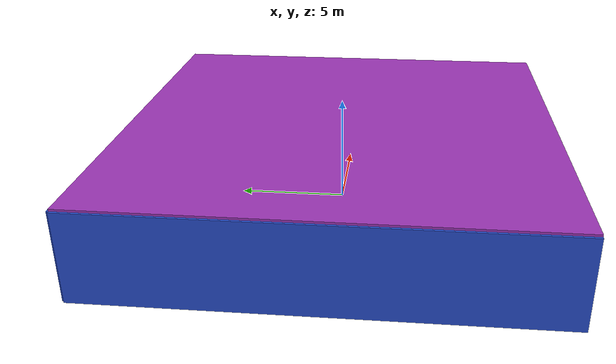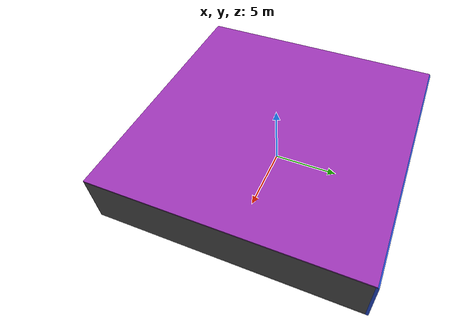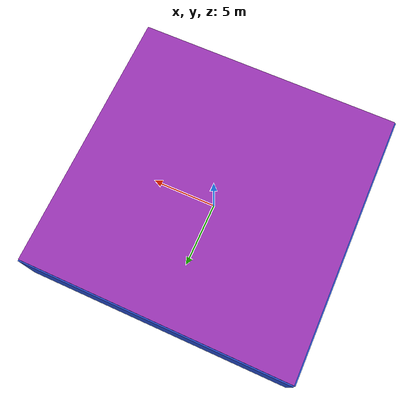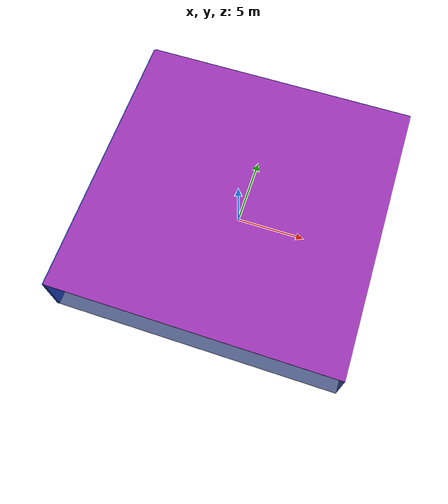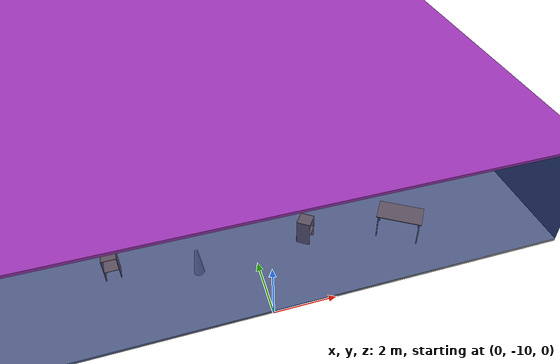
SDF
<sdf version="1.4">
 <world name="default">
  <physics type="ode">
   <max_step_size>0.001</max_step_size>
   <real_time_factor>1</real_time_factor>
   <real_time_update_rate>1000</real_time_update_rate>
   <gravity>0 0 -9.8</gravity>
  </physics>
  <scene><ambient>0.4 0.4 0.4 1</ambient><background>0.7 0.7 0.7 1</background><shadows>1</shadows></scene>
  <model name="Surrounding">
   <static>1</static>
   <link name="Ceiling">
    <collision name="Ceiling_Collision"><geometry><box><size>20 20 0.1</size></box></geometry></collision>
    <visual name="Ceiling_Visual">
     <geometry><box><size>20 20 0.1</size></box></geometry>
     <material>
      <script><uri>file://media/materials/scripts/gazebo.material</uri><name>Gazebo/Purple</name></script>
     </material>
    </visual>
    <pose>0 0 4.05 0 0 0</pose>
   </link>
   <link name="Wall_South">
    <collision name="Wall_South_Collision">
     <geometry><box><size>20 0 4</size></box></geometry>
     <pose>0 0 2 0 -0 0</pose>
    </collision>
    <visual name="Wall_South_Visual">
     <pose>0 0 2 0 -0 0</pose>
     <geometry><box><size>20 0 4</size></box></geometry>
     <material>
      <script><uri>file://media/materials/scripts/gazebo.material</uri><name>Gazebo/BlueTransparent</name></script>
     </material>
    </visual>
    <velocity_decay><linear>0</linear><angular>0</angular></velocity_decay>
    <pose>0 -10 0 0 -0 0</pose>
   </link>
   <link name="Wall_East">
    <collision name="Wall_21_Collision">
     <geometry><box><size>20 0 4</size></box></geometry>
     <pose>0 0 2 0 -0 0</pose>
    </collision>
    <visual name="Wall_21_Visual">
     <pose>0 0 2 0 -0 0</pose>
     <geometry><box><size>20 0 4</size></box></geometry>
     <material>
      <script><uri>file://media/materials/scripts/gazebo.material</uri><name>Gazebo/DarkGrey</name></script>
     </material>
    </visual>
    <velocity_decay><linear>0</linear><angular>0</angular></velocity_decay>
    <pose>10 0 0 0 -0 1.5708</pose>
   </link>
   <link name="Wall_North">
    <collision name="Wall_22_Collision">
     <geometry><box><size>20 0.2 4</size></box></geometry>
     <pose>0 0 2 0 -0 0</pose>
    </collision>
    <visual name="Wall_22_Visual">
     <pose>0 0 2 0 -0 0</pose>
     <geometry><box><size>20 0.2 4</size></box></geometry>
     <material>
      <script><uri>file://media/materials/scripts/gazebo.material</uri><name>Gazebo/BlueGlow</name></script>
     </material>
    </visual>
    <velocity_decay><linear>0</linear><angular>0</angular></velocity_decay>
    <pose>0 10 0 0 -0 0</pose>
   </link>
   <link name="Wall_West">
    <collision name="Wall_23_Collision">
     <geometry><box><size>20 0.2 4</size></box></geometry>
     <pose>0 0 2 0 -0 0</pose>
    </collision>
    <visual name="Wall_23_Visual">
     <pose>0 0 2 0 -0 0</pose>
     <geometry><box><size>20 0.2 4</size></box></geometry>
     <material>
      <script><uri>file://media/materials/scripts/gazebo.material</uri><name>Gazebo/BlueLaser</name></script>
     </material>
    </visual>
    <velocity_decay><linear>0</linear><angular>0</angular></velocity_decay>
    <pose>-10 0 0 0 0 -1.5708</pose>
   </link>
   <link name="Ground_link">
    <collision name="collision">
     <pose>0 0 .05 0 -0 0</pose>
     <geometry><box><size>20 20 0.1</size></box></geometry>
    </collision>
    <visual name="visual">
     <pose>0 0 .05 0 -0 0</pose>
     <geometry><box><size>20 20 0.1</size></box></geometry>
     <material>
      <script><uri>file://media/materials/scripts/gazebo.material</uri><name>Gazebo/Grey</name></script>
     </material>
    </visual>
   </link>
   <static>1</static>
  </model>
  <spherical_coordinates>
   <surface_model>EARTH_WGS84</surface_model>
   <latitude_deg>0</latitude_deg>
   <longitude_deg>0</longitude_deg>
   <elevation>0</elevation>
   <heading_deg>0</heading_deg>
  </spherical_coordinates>
  <light name="lightball_0" type="diffuse">
   <diffuse>0.8 0.8 0.8 1</diffuse>
   <specular>0.2 0.2 0.2 1</specular>
   <attenuation>
    <range>100</range>
    <constant>0.7</constant>
    <linear>0.01</linear>
    <quadratic>0.001</quadratic>
   </attenuation>
   <direction>-0.5 0.1 -0.9</direction>
   <pose>7.87749557358 1.30588329154 3.6008307736 0 0 0</pose>
  </light>
  <light name="lightball_1" type="diffuse">
   <diffuse>0.8 0.8 0.8 1</diffuse>
   <specular>0.2 0.2 0.2 1</specular>
   <attenuation>
    <range>100</range>
    <constant>0.7</constant>
    <linear>0.01</linear>
    <quadratic>0.001</quadratic>
   </attenuation>
   <direction>-0.5 0.1 -0.9</direction>
   <pose>1.91266783143 2.80117707605 2.00185913479 0 0 0</pose>
  </light>
  <light name="lightball_2" type="diffuse">
   <diffuse>0.8 0.8 0.8 1</diffuse>
   <specular>0.2 0.2 0.2 1</specular>
   <attenuation>
    <range>100</range>
    <constant>0.7</constant>
    <linear>0.01</linear>
    <quadratic>0.001</quadratic>
   </attenuation>
   <direction>-0.5 0.1 -0.9</direction>
   <pose>1.29537006566 9.87035472881 0.88127638127 0 0 0</pose>
  </light>
  <light name="lightball_3" type="diffuse">
   <diffuse>0.8 0.8 0.8 1</diffuse>
   <specular>0.2 0.2 0.2 1</specular>
   <attenuation>
    <range>100</range>
    <constant>0.7</constant>
    <linear>0.01</linear>
    <quadratic>0.001</quadratic>
   </attenuation>
   <direction>-0.5 0.1 -0.9</direction>
   <pose>-4.36800093651 3.12713668305 1.66328749911 0 0 0</pose>
  </light>
  <light name="lightball_4" type="diffuse">
   <diffuse>0.8 0.8 0.8 1</diffuse>
   <specular>0.2 0.2 0.2 1</specular>
   <attenuation>
    <range>100</range>
    <constant>0.7</constant>
    <linear>0.01</linear>
    <quadratic>0.001</quadratic>
   </attenuation>
   <direction>-0.5 0.1 -0.9</direction>
   <pose>-4.30366661096 -7.4222837167 3.45433783004 0 0 0</pose>
  </light>
  <include><uri>model://cabinet</uri><pose>-7.49906774891 5.19605248286 0 0 0 0.712654125517</pose></include>
  <include><uri>model://cabinet</uri><pose>-4.54513457627 -7.13954690828 0 0 0 1.5851331904</pose></include>
  <include>
   <uri>model://construction_cone</uri>
   <pose>-1.89335022913 -7.82858926753 0 0 0 2.95089314707</pose>
  </include>
  <include>
   <uri>model://textured_shapes</uri>
   <pose>-1.84891730384 4.05201796289 0 0 0 0.954927292378</pose>
  </include>
  <include><uri>model://cabinet</uri><pose>1.81939437419 -7.46712529798 0 0 0 2.5141445218</pose></include>
  <include><uri>model://table</uri><pose>4.96833611714 -8.10749532858 0 0 0 2.56828811409</pose></include>
  <include><uri>model://table</uri><pose>8.06978951894 4.80850202082 0 0 0 1.72328366665</pose></include>
 </world>
</sdf>

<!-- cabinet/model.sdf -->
<sdf version="1.5">
  <model name="cabinet">
    <static>true</static>
    <link name="cabinet_bottom_plate">
      <inertial>
        <pose>0 0 -1 0 0 0</pose>
        <inertia>
          <ixx>2.050000</ixx>
          <ixy>0</ixy>
          <ixz>0</ixz>
          <iyy>2.050000</iyy>
          <iyz>0</iyz>
          <izz>2.050000</izz>
        </inertia>
        <mass>25.000000</mass>
      </inertial>
      <collision name="cabinet_bottom_plate_geom">
        <pose>0 0 0.010000 0 0 0</pose>
        <geometry>
          <box>
            <size>0.450000 0.450000 0.020000</size>
          </box>
        </geometry>
      </collision>
      <visual name="cabinet_bottom_plate_geom_visual">
        <pose>0 0 0.010000 0 0 0</pose>
        <geometry>
          <box>
            <size>0.450000 0.450000 0.020000</size>
          </box>
        </geometry>
        <material>
          <script>
            <uri>model://media/materials/scripts/gazebo.material</uri>
            <name>Gazebo/Wood</name>
          </script>
        </material>
      </visual>
      <collision name="cabinet_bottom_plate_geom_cabinet_back_plate">
        <pose>0.235000 0 0.510000 0 0 0</pose>
        <geometry>
          <box>
            <size>0.020000 0.450000 1.020000</size>
          </box>
        </geometry>
      </collision>
      <visual name="cabinet_bottom_plate_geom_cabinet_back_plate_visual">
        <pose>0.235000 0 0.510000 0 0 0</pose>
        <geometry>
          <box>
            <size>0.020000 0.450000 1.020000</size>
          </box>
        </geometry>
        <material>
          <script>
            <uri>model://media/materials/scripts/gazebo.material</uri>
            <name>Gazebo/Wood</name>
          </script>
        </material>
      </visual>
      <collision name="cabinet_bottom_plate_geom_cabinet_left_plate">
        <pose>0 0.235000 0.510000 0 0 0</pose>
        <geometry>
          <box>
            <size>0.450000 0.020000 1.020000</size>
          </box>
        </geometry>
      </collision>
      <visual name="cabinet_bottom_plate_geom_cabinet_left_plate_visual">
        <pose>0 0.235000 0.510000 0 0 0</pose>
        <geometry>
          <box>
            <size>0.450000 0.020000 1.020000</size>
          </box>
        </geometry>
        <material>
          <script>
            <uri>model://media/materials/scripts/gazebo.material</uri>
            <name>Gazebo/Wood</name>
          </script>
        </material>
      </visual>
      <collision name="cabinet_bottom_plate_geom_cabinet_middle_plate">
        <pose>0 0 0.510000 0 0 0</pose>
        <geometry>
          <box>
            <size>0.450000 0.450000 0.020000</size>
          </box>
        </geometry>
      </collision>
      <visual name="cabinet_bottom_plate_geom_cabinet_middle_plate_visual">
        <pose>0 0 0.510000 0 0 0</pose>
        <geometry>
          <box>
            <size>0.450000 0.450000 0.020000</size>
          </box>
        </geometry>
        <material>
          <script>
            <uri>model://media/materials/scripts/gazebo.material</uri>
            <name>Gazebo/Wood</name>
          </script>
        </material>
      </visual>
      <collision name="cabinet_bottom_plate_geom_cabinet_right_plate">
        <pose>0 -0.235000 0.510000 0 0 0</pose>
        <geometry>
          <box>
            <size>0.450000 0.020000 1.020000</size>
          </box>
        </geometry>
      </collision>
      <visual name="cabinet_bottom_plate_geom_cabinet_right_plate_visual">
        <pose>0 -0.235000 0.510000 0 0 0</pose>
        <geometry>
          <box>
            <size>0.450000 0.020000 1.020000</size>
          </box>
        </geometry>
        <material>
          <script>
            <uri>model://media/materials/scripts/gazebo.material</uri>
            <name>Gazebo/Wood</name>
          </script>
        </material>
      </visual>
      <collision name="cabinet_bottom_plate_geom_cabinet_top_plate">
        <pose>0 0 1.010000 0 0 0</pose>
        <geometry>
          <box>
            <size>0.450000 0.450000 0.020000</size>
          </box>
        </geometry>
      </collision>
      <visual name="cabinet_bottom_plate_geom_cabinet_top_plate_visual">
        <pose>0 0 1.010000 0 0 0</pose>
        <geometry>
          <box>
            <size>0.450000 0.450000 0.020000</size>
          </box>
        </geometry>
        <material>
          <script>
            <uri>model://media/materials/scripts/gazebo.material</uri>
            <name>Gazebo/Wood</name>
          </script>
        </material>
      </visual>
    </link>
  </model>
</sdf>

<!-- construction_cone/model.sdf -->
<sdf version="1.5">
  <model name="Construction Cone">
    <link name="link">
      <collision name="collision">
        <geometry>
          <mesh>
            <scale>10 10 10</scale>
            <uri>file://isr-testbed/construction_cone/meshes/construction_cone.dae</uri>
          </mesh>
        </geometry>
      </collision>
      <visual name="visual">
        <geometry>
          <mesh>
            <scale>10 10 10</scale>
            <uri>file://isr-testbed/construction_cone/meshes/construction_cone.dae</uri>
          </mesh>
        </geometry>
      </visual>
    </link>
  </model>
</sdf>

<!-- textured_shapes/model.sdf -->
<sdf version="1.6">
  <model name="textured_shapes">
    <pose>0 0 0.5 0 0 0</pose>
    <link name="box">
      <pose>0 -1.5 0 0 0 0</pose>
      <collision name="collision">
        <geometry>
          <box>
            <size>1 1 1</size>
          </box>
        </geometry>
      </collision>
      <visual name="visual">
        <geometry>
          <box>
            <size>1 1 1</size>
          </box>
        </geometry>
        <material>
          <script>
            <uri>model://../model_source/models/textured_shapes/materials/scripts</uri>
            <uri>model://../model_source/models/textured_shapes/materials/textures</uri>
            <name>TexturedShape/Squares</name>
          </script>
        </material>
      </visual>
    </link>
    <link name="sphere">
      <collision name="collision">
        <geometry>
          <sphere>
            <radius>0.5</radius>
          </sphere>
        </geometry>
      </collision>
      <visual name="visual">
        <geometry>
          <sphere>
            <radius>0.5</radius>
          </sphere>
        </geometry>
        <material>
          <script>
            <uri>model://../model_source/models/textured_shapes/materials/scripts</uri>
            <uri>model://../model_source/models/textured_shapes/materials/textures</uri>
            <name>TexturedShape/Squares</name>
          </script>
        </material>
      </visual>
    </link>
    <link name="cylinder">
      <pose>0 1.5 0 0 0 0</pose>
      <collision name="collision">
        <geometry>
          <cylinder>
            <radius>0.5</radius>
            <length>1</length>
          </cylinder>
        </geometry>
      </collision>
      <visual name="visual">
        <geometry>
          <cylinder>
            <radius>0.5</radius>
            <length>1</length>
          </cylinder>
        </geometry>
        <material>
          <script>
            <uri>model://../model_source/models/textured_shapes/materials/scripts</uri>
            <uri>model://../model_source/models/textured_shapes/materials/textures</uri>
            <name>TexturedShape/Squares</name>
          </script>
        </material>
      </visual>
    </link>
  </model>
</sdf>

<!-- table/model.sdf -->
<sdf version="1.5">
  <model name="table">
    <static>true</static>
    <link name="link">
      <collision name="surface">
        <pose>0 0 1.0 0 0 0</pose>
        <geometry>
          <box>
            <size>1.5 0.8 0.03</size>
          </box>
        </geometry>
        <surface>
          <friction>
            <ode>
              <mu>0.6</mu>
              <mu2>0.6</mu2>
            </ode>
          </friction>
        </surface>
      </collision>
      <visual name="visual1">
        <pose>0 0 1.0 0 0 0</pose>
        <geometry>
          <box>
            <size>1.5 0.8 0.03</size>
          </box>
        </geometry>
        <material>
          <script>
            <uri>model://media/materials/scripts/gazebo.material</uri>
            <name>Gazebo/Wood</name>
          </script>
        </material>
      </visual>
      <collision name="front_left_leg">
        <pose>0.68 0.38 0.5 0 0 0</pose>
        <geometry>
          <cylinder>
            <radius>0.02</radius>
            <length>1.0</length>
          </cylinder>
        </geometry>
      </collision>
      <visual name="front_left_leg">
        <pose>0.68 0.38 0.5 0 0 0</pose>
        <geometry>
          <cylinder>
            <radius>0.02</radius>
            <length>1.0</length>
          </cylinder>
        </geometry>
        <material>
          <script>
            <uri>model://media/materials/scripts/gazebo.material</uri>
            <name>Gazebo/Grey</name>
          </script>
        </material>
      </visual>
      <collision name="front_right_leg">
        <pose>0.68 -0.38 0.5 0 0 0</pose>
        <geometry>
          <cylinder>
            <radius>0.02</radius>
            <length>1.0</length>
          </cylinder>
        </geometry>
      </collision>
      <visual name="front_right_leg">
        <pose>0.68 -0.38 0.5 0 0 0</pose>
        <geometry>
          <cylinder>
            <radius>0.02</radius>
            <length>1.0</length>
          </cylinder>
        </geometry>
        <material>
          <script>
            <uri>model://media/materials/scripts/gazebo.material</uri>
            <name>Gazebo/Grey</name>
          </script>
        </material>
      </visual>
      <collision name="back_right_leg">
        <pose>-0.68 -0.38 0.5 0 0 0</pose>
        <geometry>
          <cylinder>
            <radius>0.02</radius>
            <length>1.0</length>
          </cylinder>
        </geometry>
      </collision>
      <visual name="back_right_leg">
        <pose>-0.68 -0.38 0.5 0 0 0</pose>
        <geometry>
          <cylinder>
            <radius>0.02</radius>
            <length>1.0</length>
          </cylinder>
        </geometry>
        <material>
          <script>
            <uri>model://media/materials/scripts/gazebo.material</uri>
            <name>Gazebo/Grey</name>
          </script>
        </material>
      </visual>
      <collision name="back_left_leg">
        <pose>-0.68 0.38 0.5 0 0 0</pose>
        <geometry>
          <cylinder>
            <radius>0.02</radius>
            <length>1.0</length>
          </cylinder>
        </geometry>
      </collision>
      <visual name="back_left_leg">
        <pose>-0.68 0.38 0.5 0 0 0</pose>
        <geometry>
          <cylinder>
            <radius>0.02</radius>
            <length>1.0</length>
          </cylinder>
        </geometry>
        <material>
          <script>
            <uri>model://media/materials/scripts/gazebo.material</uri>
            <name>Gazebo/Grey</name>
          </script>
        </material>
      </visual>
    </link>
  </model>
</sdf>
